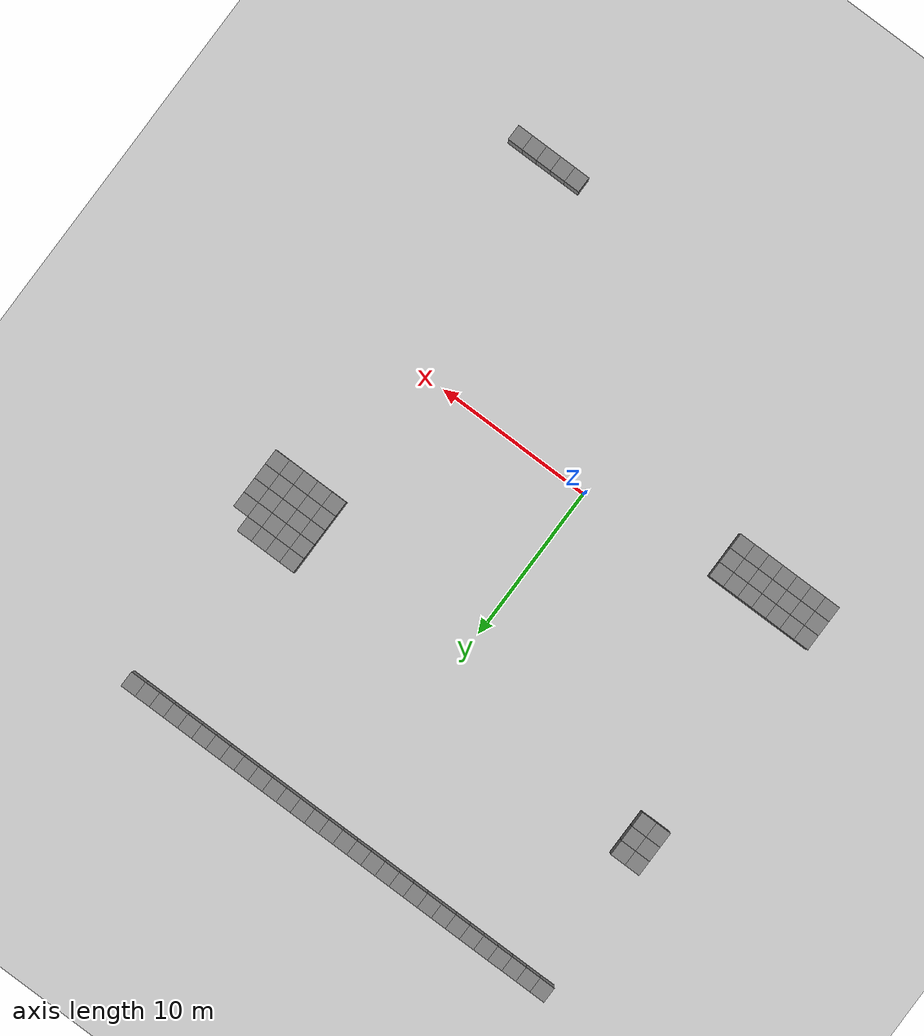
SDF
<sdf version="1.9">
 <world name="grid_world">
  <model name="ground_plane">
   <static>true</static>
   <link name="link">
    <collision name="collision">
     <geometry><plane><normal>0 0 1</normal><size>100 100</size></plane></geometry>
    </collision>
    <visual name="visual">
     <geometry><plane><normal>0 0 1</normal><size>100 100</size></plane></geometry>
     <material>
      <ambient>0.8 0.8 0.8 1</ambient>
      <diffuse>0.8 0.8 0.8 1</diffuse>
      <specular>0.8 0.8 0.8 1</specular>
     </material>
    </visual>
   </link>
  </model>
  <model name="wall_11_36">
   <static>true</static>
   <pose>11 -14 1 0 0 0</pose>
   <link name="link">
    <collision name="collision"><geometry><box><size>1 1 2</size></box></geometry></collision>
    <visual name="visual">
     <geometry><box><size>1 1 2</size></box></geometry>
     <material>
      <ambient>0.5 0.5 0.5 1</ambient>
      <diffuse>0.5 0.5 0.5 1</diffuse>
      <specular>0.5 0.5 0.5 1</specular>
     </material>
    </visual>
   </link>
  </model>
  <model name="wall_11_37">
   <static>true</static>
   <pose>12 -14 1 0 0 0</pose>
   <link name="link">
    <collision name="collision"><geometry><box><size>1 1 2</size></box></geometry></collision>
    <visual name="visual">
     <geometry><box><size>1 1 2</size></box></geometry>
     <material>
      <ambient>0.5 0.5 0.5 1</ambient>
      <diffuse>0.5 0.5 0.5 1</diffuse>
      <specular>0.5 0.5 0.5 1</specular>
     </material>
    </visual>
   </link>
  </model>
  <model name="wall_11_38">
   <static>true</static>
   <pose>13 -14 1 0 0 0</pose>
   <link name="link">
    <collision name="collision"><geometry><box><size>1 1 2</size></box></geometry></collision>
    <visual name="visual">
     <geometry><box><size>1 1 2</size></box></geometry>
     <material>
      <ambient>0.5 0.5 0.5 1</ambient>
      <diffuse>0.5 0.5 0.5 1</diffuse>
      <specular>0.5 0.5 0.5 1</specular>
     </material>
    </visual>
   </link>
  </model>
  <model name="wall_11_39">
   <static>true</static>
   <pose>14 -14 1 0 0 0</pose>
   <link name="link">
    <collision name="collision"><geometry><box><size>1 1 2</size></box></geometry></collision>
    <visual name="visual">
     <geometry><box><size>1 1 2</size></box></geometry>
     <material>
      <ambient>0.5 0.5 0.5 1</ambient>
      <diffuse>0.5 0.5 0.5 1</diffuse>
      <specular>0.5 0.5 0.5 1</specular>
     </material>
    </visual>
   </link>
  </model>
  <model name="wall_11_40">
   <static>true</static>
   <pose>15 -14 1 0 0 0</pose>
   <link name="link">
    <collision name="collision"><geometry><box><size>1 1 2</size></box></geometry></collision>
    <visual name="visual">
     <geometry><box><size>1 1 2</size></box></geometry>
     <material>
      <ambient>0.5 0.5 0.5 1</ambient>
      <diffuse>0.5 0.5 0.5 1</diffuse>
      <specular>0.5 0.5 0.5 1</specular>
     </material>
    </visual>
   </link>
  </model>
  <model name="wall_22_10">
   <static>true</static>
   <pose>-15 -3 1 0 0 0</pose>
   <link name="link">
    <collision name="collision"><geometry><box><size>1 1 2</size></box></geometry></collision>
    <visual name="visual">
     <geometry><box><size>1 1 2</size></box></geometry>
     <material>
      <ambient>0.5 0.5 0.5 1</ambient>
      <diffuse>0.5 0.5 0.5 1</diffuse>
      <specular>0.5 0.5 0.5 1</specular>
     </material>
    </visual>
   </link>
  </model>
  <model name="wall_22_11">
   <static>true</static>
   <pose>-14 -3 1 0 0 0</pose>
   <link name="link">
    <collision name="collision"><geometry><box><size>1 1 2</size></box></geometry></collision>
    <visual name="visual">
     <geometry><box><size>1 1 2</size></box></geometry>
     <material>
      <ambient>0.5 0.5 0.5 1</ambient>
      <diffuse>0.5 0.5 0.5 1</diffuse>
      <specular>0.5 0.5 0.5 1</specular>
     </material>
    </visual>
   </link>
  </model>
  <model name="wall_22_12">
   <static>true</static>
   <pose>-13 -3 1 0 0 0</pose>
   <link name="link">
    <collision name="collision"><geometry><box><size>1 1 2</size></box></geometry></collision>
    <visual name="visual">
     <geometry><box><size>1 1 2</size></box></geometry>
     <material>
      <ambient>0.5 0.5 0.5 1</ambient>
      <diffuse>0.5 0.5 0.5 1</diffuse>
      <specular>0.5 0.5 0.5 1</specular>
     </material>
    </visual>
   </link>
  </model>
  <model name="wall_22_13">
   <static>true</static>
   <pose>-12 -3 1 0 0 0</pose>
   <link name="link">
    <collision name="collision"><geometry><box><size>1 1 2</size></box></geometry></collision>
    <visual name="visual">
     <geometry><box><size>1 1 2</size></box></geometry>
     <material>
      <ambient>0.5 0.5 0.5 1</ambient>
      <diffuse>0.5 0.5 0.5 1</diffuse>
      <specular>0.5 0.5 0.5 1</specular>
     </material>
    </visual>
   </link>
  </model>
  <model name="wall_22_14">
   <static>true</static>
   <pose>-11 -3 1 0 0 0</pose>
   <link name="link">
    <collision name="collision"><geometry><box><size>1 1 2</size></box></geometry></collision>
    <visual name="visual">
     <geometry><box><size>1 1 2</size></box></geometry>
     <material>
      <ambient>0.5 0.5 0.5 1</ambient>
      <diffuse>0.5 0.5 0.5 1</diffuse>
      <specular>0.5 0.5 0.5 1</specular>
     </material>
    </visual>
   </link>
  </model>
  <model name="wall_22_15">
   <static>true</static>
   <pose>-10 -3 1 0 0 0</pose>
   <link name="link">
    <collision name="collision"><geometry><box><size>1 1 2</size></box></geometry></collision>
    <visual name="visual">
     <geometry><box><size>1 1 2</size></box></geometry>
     <material>
      <ambient>0.5 0.5 0.5 1</ambient>
      <diffuse>0.5 0.5 0.5 1</diffuse>
      <specular>0.5 0.5 0.5 1</specular>
     </material>
    </visual>
   </link>
  </model>
  <model name="wall_22_16">
   <static>true</static>
   <pose>-9 -3 1 0 0 0</pose>
   <link name="link">
    <collision name="collision"><geometry><box><size>1 1 2</size></box></geometry></collision>
    <visual name="visual">
     <geometry><box><size>1 1 2</size></box></geometry>
     <material>
      <ambient>0.5 0.5 0.5 1</ambient>
      <diffuse>0.5 0.5 0.5 1</diffuse>
      <specular>0.5 0.5 0.5 1</specular>
     </material>
    </visual>
   </link>
  </model>
  <model name="wall_23_10">
   <static>true</static>
   <pose>-15 -2 1 0 0 0</pose>
   <link name="link">
    <collision name="collision"><geometry><box><size>1 1 2</size></box></geometry></collision>
    <visual name="visual">
     <geometry><box><size>1 1 2</size></box></geometry>
     <material>
      <ambient>0.5 0.5 0.5 1</ambient>
      <diffuse>0.5 0.5 0.5 1</diffuse>
      <specular>0.5 0.5 0.5 1</specular>
     </material>
    </visual>
   </link>
  </model>
  <model name="wall_23_11">
   <static>true</static>
   <pose>-14 -2 1 0 0 0</pose>
   <link name="link">
    <collision name="collision"><geometry><box><size>1 1 2</size></box></geometry></collision>
    <visual name="visual">
     <geometry><box><size>1 1 2</size></box></geometry>
     <material>
      <ambient>0.5 0.5 0.5 1</ambient>
      <diffuse>0.5 0.5 0.5 1</diffuse>
      <specular>0.5 0.5 0.5 1</specular>
     </material>
    </visual>
   </link>
  </model>
  <model name="wall_23_12">
   <static>true</static>
   <pose>-13 -2 1 0 0 0</pose>
   <link name="link">
    <collision name="collision"><geometry><box><size>1 1 2</size></box></geometry></collision>
    <visual name="visual">
     <geometry><box><size>1 1 2</size></box></geometry>
     <material>
      <ambient>0.5 0.5 0.5 1</ambient>
      <diffuse>0.5 0.5 0.5 1</diffuse>
      <specular>0.5 0.5 0.5 1</specular>
     </material>
    </visual>
   </link>
  </model>
  <model name="wall_23_13">
   <static>true</static>
   <pose>-12 -2 1 0 0 0</pose>
   <link name="link">
    <collision name="collision"><geometry><box><size>1 1 2</size></box></geometry></collision>
    <visual name="visual">
     <geometry><box><size>1 1 2</size></box></geometry>
     <material>
      <ambient>0.5 0.5 0.5 1</ambient>
      <diffuse>0.5 0.5 0.5 1</diffuse>
      <specular>0.5 0.5 0.5 1</specular>
     </material>
    </visual>
   </link>
  </model>
  <model name="wall_23_14">
   <static>true</static>
   <pose>-11 -2 1 0 0 0</pose>
   <link name="link">
    <collision name="collision"><geometry><box><size>1 1 2</size></box></geometry></collision>
    <visual name="visual">
     <geometry><box><size>1 1 2</size></box></geometry>
     <material>
      <ambient>0.5 0.5 0.5 1</ambient>
      <diffuse>0.5 0.5 0.5 1</diffuse>
      <specular>0.5 0.5 0.5 1</specular>
     </material>
    </visual>
   </link>
  </model>
  <model name="wall_23_15">
   <static>true</static>
   <pose>-10 -2 1 0 0 0</pose>
   <link name="link">
    <collision name="collision"><geometry><box><size>1 1 2</size></box></geometry></collision>
    <visual name="visual">
     <geometry><box><size>1 1 2</size></box></geometry>
     <material>
      <ambient>0.5 0.5 0.5 1</ambient>
      <diffuse>0.5 0.5 0.5 1</diffuse>
      <specular>0.5 0.5 0.5 1</specular>
     </material>
    </visual>
   </link>
  </model>
  <model name="wall_23_16">
   <static>true</static>
   <pose>-9 -2 1 0 0 0</pose>
   <link name="link">
    <collision name="collision"><geometry><box><size>1 1 2</size></box></geometry></collision>
    <visual name="visual">
     <geometry><box><size>1 1 2</size></box></geometry>
     <material>
      <ambient>0.5 0.5 0.5 1</ambient>
      <diffuse>0.5 0.5 0.5 1</diffuse>
      <specular>0.5 0.5 0.5 1</specular>
     </material>
    </visual>
   </link>
  </model>
  <model name="wall_24_10">
   <static>true</static>
   <pose>-15 -1 1 0 0 0</pose>
   <link name="link">
    <collision name="collision"><geometry><box><size>1 1 2</size></box></geometry></collision>
    <visual name="visual">
     <geometry><box><size>1 1 2</size></box></geometry>
     <material>
      <ambient>0.5 0.5 0.5 1</ambient>
      <diffuse>0.5 0.5 0.5 1</diffuse>
      <specular>0.5 0.5 0.5 1</specular>
     </material>
    </visual>
   </link>
  </model>
  <model name="wall_24_11">
   <static>true</static>
   <pose>-14 -1 1 0 0 0</pose>
   <link name="link">
    <collision name="collision"><geometry><box><size>1 1 2</size></box></geometry></collision>
    <visual name="visual">
     <geometry><box><size>1 1 2</size></box></geometry>
     <material>
      <ambient>0.5 0.5 0.5 1</ambient>
      <diffuse>0.5 0.5 0.5 1</diffuse>
      <specular>0.5 0.5 0.5 1</specular>
     </material>
    </visual>
   </link>
  </model>
  <model name="wall_24_12">
   <static>true</static>
   <pose>-13 -1 1 0 0 0</pose>
   <link name="link">
    <collision name="collision"><geometry><box><size>1 1 2</size></box></geometry></collision>
    <visual name="visual">
     <geometry><box><size>1 1 2</size></box></geometry>
     <material>
      <ambient>0.5 0.5 0.5 1</ambient>
      <diffuse>0.5 0.5 0.5 1</diffuse>
      <specular>0.5 0.5 0.5 1</specular>
     </material>
    </visual>
   </link>
  </model>
  <model name="wall_24_13">
   <static>true</static>
   <pose>-12 -1 1 0 0 0</pose>
   <link name="link">
    <collision name="collision"><geometry><box><size>1 1 2</size></box></geometry></collision>
    <visual name="visual">
     <geometry><box><size>1 1 2</size></box></geometry>
     <material>
      <ambient>0.5 0.5 0.5 1</ambient>
      <diffuse>0.5 0.5 0.5 1</diffuse>
      <specular>0.5 0.5 0.5 1</specular>
     </material>
    </visual>
   </link>
  </model>
  <model name="wall_24_14">
   <static>true</static>
   <pose>-11 -1 1 0 0 0</pose>
   <link name="link">
    <collision name="collision"><geometry><box><size>1 1 2</size></box></geometry></collision>
    <visual name="visual">
     <geometry><box><size>1 1 2</size></box></geometry>
     <material>
      <ambient>0.5 0.5 0.5 1</ambient>
      <diffuse>0.5 0.5 0.5 1</diffuse>
      <specular>0.5 0.5 0.5 1</specular>
     </material>
    </visual>
   </link>
  </model>
  <model name="wall_24_15">
   <static>true</static>
   <pose>-10 -1 1 0 0 0</pose>
   <link name="link">
    <collision name="collision"><geometry><box><size>1 1 2</size></box></geometry></collision>
    <visual name="visual">
     <geometry><box><size>1 1 2</size></box></geometry>
     <material>
      <ambient>0.5 0.5 0.5 1</ambient>
      <diffuse>0.5 0.5 0.5 1</diffuse>
      <specular>0.5 0.5 0.5 1</specular>
     </material>
    </visual>
   </link>
  </model>
  <model name="wall_24_16">
   <static>true</static>
   <pose>-9 -1 1 0 0 0</pose>
   <link name="link">
    <collision name="collision"><geometry><box><size>1 1 2</size></box></geometry></collision>
    <visual name="visual">
     <geometry><box><size>1 1 2</size></box></geometry>
     <material>
      <ambient>0.5 0.5 0.5 1</ambient>
      <diffuse>0.5 0.5 0.5 1</diffuse>
      <specular>0.5 0.5 0.5 1</specular>
     </material>
    </visual>
   </link>
  </model>
  <model name="wall_34_36">
   <static>true</static>
   <pose>11 9 1 0 0 0</pose>
   <link name="link">
    <collision name="collision"><geometry><box><size>1 1 2</size></box></geometry></collision>
    <visual name="visual">
     <geometry><box><size>1 1 2</size></box></geometry>
     <material>
      <ambient>0.5 0.5 0.5 1</ambient>
      <diffuse>0.5 0.5 0.5 1</diffuse>
      <specular>0.5 0.5 0.5 1</specular>
     </material>
    </visual>
   </link>
  </model>
  <model name="wall_34_37">
   <static>true</static>
   <pose>12 9 1 0 0 0</pose>
   <link name="link">
    <collision name="collision"><geometry><box><size>1 1 2</size></box></geometry></collision>
    <visual name="visual">
     <geometry><box><size>1 1 2</size></box></geometry>
     <material>
      <ambient>0.5 0.5 0.5 1</ambient>
      <diffuse>0.5 0.5 0.5 1</diffuse>
      <specular>0.5 0.5 0.5 1</specular>
     </material>
    </visual>
   </link>
  </model>
  <model name="wall_34_38">
   <static>true</static>
   <pose>13 9 1 0 0 0</pose>
   <link name="link">
    <collision name="collision"><geometry><box><size>1 1 2</size></box></geometry></collision>
    <visual name="visual">
     <geometry><box><size>1 1 2</size></box></geometry>
     <material>
      <ambient>0.5 0.5 0.5 1</ambient>
      <diffuse>0.5 0.5 0.5 1</diffuse>
      <specular>0.5 0.5 0.5 1</specular>
     </material>
    </visual>
   </link>
  </model>
  <model name="wall_34_39">
   <static>true</static>
   <pose>14 9 1 0 0 0</pose>
   <link name="link">
    <collision name="collision"><geometry><box><size>1 1 2</size></box></geometry></collision>
    <visual name="visual">
     <geometry><box><size>1 1 2</size></box></geometry>
     <material>
      <ambient>0.5 0.5 0.5 1</ambient>
      <diffuse>0.5 0.5 0.5 1</diffuse>
      <specular>0.5 0.5 0.5 1</specular>
     </material>
    </visual>
   </link>
  </model>
  <model name="wall_34_40">
   <static>true</static>
   <pose>15 9 1 0 0 0</pose>
   <link name="link">
    <collision name="collision"><geometry><box><size>1 1 2</size></box></geometry></collision>
    <visual name="visual">
     <geometry><box><size>1 1 2</size></box></geometry>
     <material>
      <ambient>0.5 0.5 0.5 1</ambient>
      <diffuse>0.5 0.5 0.5 1</diffuse>
      <specular>0.5 0.5 0.5 1</specular>
     </material>
    </visual>
   </link>
  </model>
  <model name="wall_35_36">
   <static>true</static>
   <pose>11 10 1 0 0 0</pose>
   <link name="link">
    <collision name="collision"><geometry><box><size>1 1 2</size></box></geometry></collision>
    <visual name="visual">
     <geometry><box><size>1 1 2</size></box></geometry>
     <material>
      <ambient>0.5 0.5 0.5 1</ambient>
      <diffuse>0.5 0.5 0.5 1</diffuse>
      <specular>0.5 0.5 0.5 1</specular>
     </material>
    </visual>
   </link>
  </model>
  <model name="wall_35_37">
   <static>true</static>
   <pose>12 10 1 0 0 0</pose>
   <link name="link">
    <collision name="collision"><geometry><box><size>1 1 2</size></box></geometry></collision>
    <visual name="visual">
     <geometry><box><size>1 1 2</size></box></geometry>
     <material>
      <ambient>0.5 0.5 0.5 1</ambient>
      <diffuse>0.5 0.5 0.5 1</diffuse>
      <specular>0.5 0.5 0.5 1</specular>
     </material>
    </visual>
   </link>
  </model>
  <model name="wall_35_38">
   <static>true</static>
   <pose>13 10 1 0 0 0</pose>
   <link name="link">
    <collision name="collision"><geometry><box><size>1 1 2</size></box></geometry></collision>
    <visual name="visual">
     <geometry><box><size>1 1 2</size></box></geometry>
     <material>
      <ambient>0.5 0.5 0.5 1</ambient>
      <diffuse>0.5 0.5 0.5 1</diffuse>
      <specular>0.5 0.5 0.5 1</specular>
     </material>
    </visual>
   </link>
  </model>
  <model name="wall_35_39">
   <static>true</static>
   <pose>14 10 1 0 0 0</pose>
   <link name="link">
    <collision name="collision"><geometry><box><size>1 1 2</size></box></geometry></collision>
    <visual name="visual">
     <geometry><box><size>1 1 2</size></box></geometry>
     <material>
      <ambient>0.5 0.5 0.5 1</ambient>
      <diffuse>0.5 0.5 0.5 1</diffuse>
      <specular>0.5 0.5 0.5 1</specular>
     </material>
    </visual>
   </link>
  </model>
  <model name="wall_35_40">
   <static>true</static>
   <pose>15 10 1 0 0 0</pose>
   <link name="link">
    <collision name="collision"><geometry><box><size>1 1 2</size></box></geometry></collision>
    <visual name="visual">
     <geometry><box><size>1 1 2</size></box></geometry>
     <material>
      <ambient>0.5 0.5 0.5 1</ambient>
      <diffuse>0.5 0.5 0.5 1</diffuse>
      <specular>0.5 0.5 0.5 1</specular>
     </material>
    </visual>
   </link>
  </model>
  <model name="wall_36_36">
   <static>true</static>
   <pose>11 11 1 0 0 0</pose>
   <link name="link">
    <collision name="collision"><geometry><box><size>1 1 2</size></box></geometry></collision>
    <visual name="visual">
     <geometry><box><size>1 1 2</size></box></geometry>
     <material>
      <ambient>0.5 0.5 0.5 1</ambient>
      <diffuse>0.5 0.5 0.5 1</diffuse>
      <specular>0.5 0.5 0.5 1</specular>
     </material>
    </visual>
   </link>
  </model>
  <model name="wall_36_37">
   <static>true</static>
   <pose>12 11 1 0 0 0</pose>
   <link name="link">
    <collision name="collision"><geometry><box><size>1 1 2</size></box></geometry></collision>
    <visual name="visual">
     <geometry><box><size>1 1 2</size></box></geometry>
     <material>
      <ambient>0.5 0.5 0.5 1</ambient>
      <diffuse>0.5 0.5 0.5 1</diffuse>
      <specular>0.5 0.5 0.5 1</specular>
     </material>
    </visual>
   </link>
  </model>
  <model name="wall_36_38">
   <static>true</static>
   <pose>13 11 1 0 0 0</pose>
   <link name="link">
    <collision name="collision"><geometry><box><size>1 1 2</size></box></geometry></collision>
    <visual name="visual">
     <geometry><box><size>1 1 2</size></box></geometry>
     <material>
      <ambient>0.5 0.5 0.5 1</ambient>
      <diffuse>0.5 0.5 0.5 1</diffuse>
      <specular>0.5 0.5 0.5 1</specular>
     </material>
    </visual>
   </link>
  </model>
  <model name="wall_36_39">
   <static>true</static>
   <pose>14 11 1 0 0 0</pose>
   <link name="link">
    <collision name="collision"><geometry><box><size>1 1 2</size></box></geometry></collision>
    <visual name="visual">
     <geometry><box><size>1 1 2</size></box></geometry>
     <material>
      <ambient>0.5 0.5 0.5 1</ambient>
      <diffuse>0.5 0.5 0.5 1</diffuse>
      <specular>0.5 0.5 0.5 1</specular>
     </material>
    </visual>
   </link>
  </model>
  <model name="wall_36_40">
   <static>true</static>
   <pose>15 11 1 0 0 0</pose>
   <link name="link">
    <collision name="collision"><geometry><box><size>1 1 2</size></box></geometry></collision>
    <visual name="visual">
     <geometry><box><size>1 1 2</size></box></geometry>
     <material>
      <ambient>0.5 0.5 0.5 1</ambient>
      <diffuse>0.5 0.5 0.5 1</diffuse>
      <specular>0.5 0.5 0.5 1</specular>
     </material>
    </visual>
   </link>
  </model>
  <model name="wall_37_36">
   <static>true</static>
   <pose>11 12 1 0 0 0</pose>
   <link name="link">
    <collision name="collision"><geometry><box><size>1 1 2</size></box></geometry></collision>
    <visual name="visual">
     <geometry><box><size>1 1 2</size></box></geometry>
     <material>
      <ambient>0.5 0.5 0.5 1</ambient>
      <diffuse>0.5 0.5 0.5 1</diffuse>
      <specular>0.5 0.5 0.5 1</specular>
     </material>
    </visual>
   </link>
  </model>
  <model name="wall_37_37">
   <static>true</static>
   <pose>12 12 1 0 0 0</pose>
   <link name="link">
    <collision name="collision"><geometry><box><size>1 1 2</size></box></geometry></collision>
    <visual name="visual">
     <geometry><box><size>1 1 2</size></box></geometry>
     <material>
      <ambient>0.5 0.5 0.5 1</ambient>
      <diffuse>0.5 0.5 0.5 1</diffuse>
      <specular>0.5 0.5 0.5 1</specular>
     </material>
    </visual>
   </link>
  </model>
  <model name="wall_37_38">
   <static>true</static>
   <pose>13 12 1 0 0 0</pose>
   <link name="link">
    <collision name="collision"><geometry><box><size>1 1 2</size></box></geometry></collision>
    <visual name="visual">
     <geometry><box><size>1 1 2</size></box></geometry>
     <material>
      <ambient>0.5 0.5 0.5 1</ambient>
      <diffuse>0.5 0.5 0.5 1</diffuse>
      <specular>0.5 0.5 0.5 1</specular>
     </material>
    </visual>
   </link>
  </model>
  <model name="wall_37_39">
   <static>true</static>
   <pose>14 12 1 0 0 0</pose>
   <link name="link">
    <collision name="collision"><geometry><box><size>1 1 2</size></box></geometry></collision>
    <visual name="visual">
     <geometry><box><size>1 1 2</size></box></geometry>
     <material>
      <ambient>0.5 0.5 0.5 1</ambient>
      <diffuse>0.5 0.5 0.5 1</diffuse>
      <specular>0.5 0.5 0.5 1</specular>
     </material>
    </visual>
   </link>
  </model>
  <model name="wall_37_40">
   <static>true</static>
   <pose>15 12 1 0 0 0</pose>
   <link name="link">
    <collision name="collision"><geometry><box><size>1 1 2</size></box></geometry></collision>
    <visual name="visual">
     <geometry><box><size>1 1 2</size></box></geometry>
     <material>
      <ambient>0.5 0.5 0.5 1</ambient>
      <diffuse>0.5 0.5 0.5 1</diffuse>
      <specular>0.5 0.5 0.5 1</specular>
     </material>
    </visual>
   </link>
  </model>
  <model name="wall_38_10">
   <static>true</static>
   <pose>-15 13 1 0 0 0</pose>
   <link name="link">
    <collision name="collision"><geometry><box><size>1 1 2</size></box></geometry></collision>
    <visual name="visual">
     <geometry><box><size>1 1 2</size></box></geometry>
     <material>
      <ambient>0.5 0.5 0.5 1</ambient>
      <diffuse>0.5 0.5 0.5 1</diffuse>
      <specular>0.5 0.5 0.5 1</specular>
     </material>
    </visual>
   </link>
  </model>
  <model name="wall_38_11">
   <static>true</static>
   <pose>-14 13 1 0 0 0</pose>
   <link name="link">
    <collision name="collision"><geometry><box><size>1 1 2</size></box></geometry></collision>
    <visual name="visual">
     <geometry><box><size>1 1 2</size></box></geometry>
     <material>
      <ambient>0.5 0.5 0.5 1</ambient>
      <diffuse>0.5 0.5 0.5 1</diffuse>
      <specular>0.5 0.5 0.5 1</specular>
     </material>
    </visual>
   </link>
  </model>
  <model name="wall_38_36">
   <static>true</static>
   <pose>11 13 1 0 0 0</pose>
   <link name="link">
    <collision name="collision"><geometry><box><size>1 1 2</size></box></geometry></collision>
    <visual name="visual">
     <geometry><box><size>1 1 2</size></box></geometry>
     <material>
      <ambient>0.5 0.5 0.5 1</ambient>
      <diffuse>0.5 0.5 0.5 1</diffuse>
      <specular>0.5 0.5 0.5 1</specular>
     </material>
    </visual>
   </link>
  </model>
  <model name="wall_38_37">
   <static>true</static>
   <pose>12 13 1 0 0 0</pose>
   <link name="link">
    <collision name="collision"><geometry><box><size>1 1 2</size></box></geometry></collision>
    <visual name="visual">
     <geometry><box><size>1 1 2</size></box></geometry>
     <material>
      <ambient>0.5 0.5 0.5 1</ambient>
      <diffuse>0.5 0.5 0.5 1</diffuse>
      <specular>0.5 0.5 0.5 1</specular>
     </material>
    </visual>
   </link>
  </model>
  <model name="wall_38_38">
   <static>true</static>
   <pose>13 13 1 0 0 0</pose>
   <link name="link">
    <collision name="collision"><geometry><box><size>1 1 2</size></box></geometry></collision>
    <visual name="visual">
     <geometry><box><size>1 1 2</size></box></geometry>
     <material>
      <ambient>0.5 0.5 0.5 1</ambient>
      <diffuse>0.5 0.5 0.5 1</diffuse>
      <specular>0.5 0.5 0.5 1</specular>
     </material>
    </visual>
   </link>
  </model>
  <model name="wall_38_39">
   <static>true</static>
   <pose>14 13 1 0 0 0</pose>
   <link name="link">
    <collision name="collision"><geometry><box><size>1 1 2</size></box></geometry></collision>
    <visual name="visual">
     <geometry><box><size>1 1 2</size></box></geometry>
     <material>
      <ambient>0.5 0.5 0.5 1</ambient>
      <diffuse>0.5 0.5 0.5 1</diffuse>
      <specular>0.5 0.5 0.5 1</specular>
     </material>
    </visual>
   </link>
  </model>
  <model name="wall_39_10">
   <static>true</static>
   <pose>-15 14 1 0 0 0</pose>
   <link name="link">
    <collision name="collision"><geometry><box><size>1 1 2</size></box></geometry></collision>
    <visual name="visual">
     <geometry><box><size>1 1 2</size></box></geometry>
     <material>
      <ambient>0.5 0.5 0.5 1</ambient>
      <diffuse>0.5 0.5 0.5 1</diffuse>
      <specular>0.5 0.5 0.5 1</specular>
     </material>
    </visual>
   </link>
  </model>
  <model name="wall_39_11">
   <static>true</static>
   <pose>-14 14 1 0 0 0</pose>
   <link name="link">
    <collision name="collision"><geometry><box><size>1 1 2</size></box></geometry></collision>
    <visual name="visual">
     <geometry><box><size>1 1 2</size></box></geometry>
     <material>
      <ambient>0.5 0.5 0.5 1</ambient>
      <diffuse>0.5 0.5 0.5 1</diffuse>
      <specular>0.5 0.5 0.5 1</specular>
     </material>
    </visual>
   </link>
  </model>
  <model name="wall_40_10">
   <static>true</static>
   <pose>-15 15 1 0 0 0</pose>
   <link name="link">
    <collision name="collision"><geometry><box><size>1 1 2</size></box></geometry></collision>
    <visual name="visual">
     <geometry><box><size>1 1 2</size></box></geometry>
     <material>
      <ambient>0.5 0.5 0.5 1</ambient>
      <diffuse>0.5 0.5 0.5 1</diffuse>
      <specular>0.5 0.5 0.5 1</specular>
     </material>
    </visual>
   </link>
  </model>
  <model name="wall_40_11">
   <static>true</static>
   <pose>-14 15 1 0 0 0</pose>
   <link name="link">
    <collision name="collision"><geometry><box><size>1 1 2</size></box></geometry></collision>
    <visual name="visual">
     <geometry><box><size>1 1 2</size></box></geometry>
     <material>
      <ambient>0.5 0.5 0.5 1</ambient>
      <diffuse>0.5 0.5 0.5 1</diffuse>
      <specular>0.5 0.5 0.5 1</specular>
     </material>
    </visual>
   </link>
  </model>
  <model name="wall_49_10">
   <static>true</static>
   <pose>-15 24 1 0 0 0</pose>
   <link name="link">
    <collision name="collision"><geometry><box><size>1 1 2</size></box></geometry></collision>
    <visual name="visual">
     <geometry><box><size>1 1 2</size></box></geometry>
     <material>
      <ambient>0.5 0.5 0.5 1</ambient>
      <diffuse>0.5 0.5 0.5 1</diffuse>
      <specular>0.5 0.5 0.5 1</specular>
     </material>
    </visual>
   </link>
  </model>
  <model name="wall_49_11">
   <static>true</static>
   <pose>-14 24 1 0 0 0</pose>
   <link name="link">
    <collision name="collision"><geometry><box><size>1 1 2</size></box></geometry></collision>
    <visual name="visual">
     <geometry><box><size>1 1 2</size></box></geometry>
     <material>
      <ambient>0.5 0.5 0.5 1</ambient>
      <diffuse>0.5 0.5 0.5 1</diffuse>
      <specular>0.5 0.5 0.5 1</specular>
     </material>
    </visual>
   </link>
  </model>
  <model name="wall_49_12">
   <static>true</static>
   <pose>-13 24 1 0 0 0</pose>
   <link name="link">
    <collision name="collision"><geometry><box><size>1 1 2</size></box></geometry></collision>
    <visual name="visual">
     <geometry><box><size>1 1 2</size></box></geometry>
     <material>
      <ambient>0.5 0.5 0.5 1</ambient>
      <diffuse>0.5 0.5 0.5 1</diffuse>
      <specular>0.5 0.5 0.5 1</specular>
     </material>
    </visual>
   </link>
  </model>
  <model name="wall_49_13">
   <static>true</static>
   <pose>-12 24 1 0 0 0</pose>
   <link name="link">
    <collision name="collision"><geometry><box><size>1 1 2</size></box></geometry></collision>
    <visual name="visual">
     <geometry><box><size>1 1 2</size></box></geometry>
     <material>
      <ambient>0.5 0.5 0.5 1</ambient>
      <diffuse>0.5 0.5 0.5 1</diffuse>
      <specular>0.5 0.5 0.5 1</specular>
     </material>
    </visual>
   </link>
  </model>
  <model name="wall_49_14">
   <static>true</static>
   <pose>-11 24 1 0 0 0</pose>
   <link name="link">
    <collision name="collision"><geometry><box><size>1 1 2</size></box></geometry></collision>
    <visual name="visual">
     <geometry><box><size>1 1 2</size></box></geometry>
     <material>
      <ambient>0.5 0.5 0.5 1</ambient>
      <diffuse>0.5 0.5 0.5 1</diffuse>
      <specular>0.5 0.5 0.5 1</specular>
     </material>
    </visual>
   </link>
  </model>
  <model name="wall_49_15">
   <static>true</static>
   <pose>-10 24 1 0 0 0</pose>
   <link name="link">
    <collision name="collision"><geometry><box><size>1 1 2</size></box></geometry></collision>
    <visual name="visual">
     <geometry><box><size>1 1 2</size></box></geometry>
     <material>
      <ambient>0.5 0.5 0.5 1</ambient>
      <diffuse>0.5 0.5 0.5 1</diffuse>
      <specular>0.5 0.5 0.5 1</specular>
     </material>
    </visual>
   </link>
  </model>
  <model name="wall_49_16">
   <static>true</static>
   <pose>-9 24 1 0 0 0</pose>
   <link name="link">
    <collision name="collision"><geometry><box><size>1 1 2</size></box></geometry></collision>
    <visual name="visual">
     <geometry><box><size>1 1 2</size></box></geometry>
     <material>
      <ambient>0.5 0.5 0.5 1</ambient>
      <diffuse>0.5 0.5 0.5 1</diffuse>
      <specular>0.5 0.5 0.5 1</specular>
     </material>
    </visual>
   </link>
  </model>
  <model name="wall_49_17">
   <static>true</static>
   <pose>-8 24 1 0 0 0</pose>
   <link name="link">
    <collision name="collision"><geometry><box><size>1 1 2</size></box></geometry></collision>
    <visual name="visual">
     <geometry><box><size>1 1 2</size></box></geometry>
     <material>
      <ambient>0.5 0.5 0.5 1</ambient>
      <diffuse>0.5 0.5 0.5 1</diffuse>
      <specular>0.5 0.5 0.5 1</specular>
     </material>
    </visual>
   </link>
  </model>
  <model name="wall_49_18">
   <static>true</static>
   <pose>-7 24 1 0 0 0</pose>
   <link name="link">
    <collision name="collision"><geometry><box><size>1 1 2</size></box></geometry></collision>
    <visual name="visual">
     <geometry><box><size>1 1 2</size></box></geometry>
     <material>
      <ambient>0.5 0.5 0.5 1</ambient>
      <diffuse>0.5 0.5 0.5 1</diffuse>
      <specular>0.5 0.5 0.5 1</specular>
     </material>
    </visual>
   </link>
  </model>
  <model name="wall_49_19">
   <static>true</static>
   <pose>-6 24 1 0 0 0</pose>
   <link name="link">
    <collision name="collision"><geometry><box><size>1 1 2</size></box></geometry></collision>
    <visual name="visual">
     <geometry><box><size>1 1 2</size></box></geometry>
     <material>
      <ambient>0.5 0.5 0.5 1</ambient>
      <diffuse>0.5 0.5 0.5 1</diffuse>
      <specular>0.5 0.5 0.5 1</specular>
     </material>
    </visual>
   </link>
  </model>
  <model name="wall_49_20">
   <static>true</static>
   <pose>-5 24 1 0 0 0</pose>
   <link name="link">
    <collision name="collision"><geometry><box><size>1 1 2</size></box></geometry></collision>
    <visual name="visual">
     <geometry><box><size>1 1 2</size></box></geometry>
     <material>
      <ambient>0.5 0.5 0.5 1</ambient>
      <diffuse>0.5 0.5 0.5 1</diffuse>
      <specular>0.5 0.5 0.5 1</specular>
     </material>
    </visual>
   </link>
  </model>
  <model name="wall_49_21">
   <static>true</static>
   <pose>-4 24 1 0 0 0</pose>
   <link name="link">
    <collision name="collision"><geometry><box><size>1 1 2</size></box></geometry></collision>
    <visual name="visual">
     <geometry><box><size>1 1 2</size></box></geometry>
     <material>
      <ambient>0.5 0.5 0.5 1</ambient>
      <diffuse>0.5 0.5 0.5 1</diffuse>
      <specular>0.5 0.5 0.5 1</specular>
     </material>
    </visual>
   </link>
  </model>
  <model name="wall_49_22">
   <static>true</static>
   <pose>-3 24 1 0 0 0</pose>
   <link name="link">
    <collision name="collision"><geometry><box><size>1 1 2</size></box></geometry></collision>
    <visual name="visual">
     <geometry><box><size>1 1 2</size></box></geometry>
     <material>
      <ambient>0.5 0.5 0.5 1</ambient>
      <diffuse>0.5 0.5 0.5 1</diffuse>
      <specular>0.5 0.5 0.5 1</specular>
     </material>
    </visual>
   </link>
  </model>
  <model name="wall_49_23">
   <static>true</static>
   <pose>-2 24 1 0 0 0</pose>
   <link name="link">
    <collision name="collision"><geometry><box><size>1 1 2</size></box></geometry></collision>
    <visual name="visual">
     <geometry><box><size>1 1 2</size></box></geometry>
     <material>
      <ambient>0.5 0.5 0.5 1</ambient>
      <diffuse>0.5 0.5 0.5 1</diffuse>
      <specular>0.5 0.5 0.5 1</specular>
     </material>
    </visual>
   </link>
  </model>
  <model name="wall_49_24">
   <static>true</static>
   <pose>-1 24 1 0 0 0</pose>
   <link name="link">
    <collision name="collision"><geometry><box><size>1 1 2</size></box></geometry></collision>
    <visual name="visual">
     <geometry><box><size>1 1 2</size></box></geometry>
     <material>
      <ambient>0.5 0.5 0.5 1</ambient>
      <diffuse>0.5 0.5 0.5 1</diffuse>
      <specular>0.5 0.5 0.5 1</specular>
     </material>
    </visual>
   </link>
  </model>
  <model name="wall_49_25">
   <static>true</static>
   <pose>0 24 1 0 0 0</pose>
   <link name="link">
    <collision name="collision"><geometry><box><size>1 1 2</size></box></geometry></collision>
    <visual name="visual">
     <geometry><box><size>1 1 2</size></box></geometry>
     <material>
      <ambient>0.5 0.5 0.5 1</ambient>
      <diffuse>0.5 0.5 0.5 1</diffuse>
      <specular>0.5 0.5 0.5 1</specular>
     </material>
    </visual>
   </link>
  </model>
  <model name="wall_49_26">
   <static>true</static>
   <pose>1 24 1 0 0 0</pose>
   <link name="link">
    <collision name="collision"><geometry><box><size>1 1 2</size></box></geometry></collision>
    <visual name="visual">
     <geometry><box><size>1 1 2</size></box></geometry>
     <material>
      <ambient>0.5 0.5 0.5 1</ambient>
      <diffuse>0.5 0.5 0.5 1</diffuse>
      <specular>0.5 0.5 0.5 1</specular>
     </material>
    </visual>
   </link>
  </model>
  <model name="wall_49_27">
   <static>true</static>
   <pose>2 24 1 0 0 0</pose>
   <link name="link">
    <collision name="collision"><geometry><box><size>1 1 2</size></box></geometry></collision>
    <visual name="visual">
     <geometry><box><size>1 1 2</size></box></geometry>
     <material>
      <ambient>0.5 0.5 0.5 1</ambient>
      <diffuse>0.5 0.5 0.5 1</diffuse>
      <specular>0.5 0.5 0.5 1</specular>
     </material>
    </visual>
   </link>
  </model>
  <model name="wall_49_28">
   <static>true</static>
   <pose>3 24 1 0 0 0</pose>
   <link name="link">
    <collision name="collision"><geometry><box><size>1 1 2</size></box></geometry></collision>
    <visual name="visual">
     <geometry><box><size>1 1 2</size></box></geometry>
     <material>
      <ambient>0.5 0.5 0.5 1</ambient>
      <diffuse>0.5 0.5 0.5 1</diffuse>
      <specular>0.5 0.5 0.5 1</specular>
     </material>
    </visual>
   </link>
  </model>
  <model name="wall_49_29">
   <static>true</static>
   <pose>4 24 1 0 0 0</pose>
   <link name="link">
    <collision name="collision"><geometry><box><size>1 1 2</size></box></geometry></collision>
    <visual name="visual">
     <geometry><box><size>1 1 2</size></box></geometry>
     <material>
      <ambient>0.5 0.5 0.5 1</ambient>
      <diffuse>0.5 0.5 0.5 1</diffuse>
      <specular>0.5 0.5 0.5 1</specular>
     </material>
    </visual>
   </link>
  </model>
  <model name="wall_49_30">
   <static>true</static>
   <pose>5 24 1 0 0 0</pose>
   <link name="link">
    <collision name="collision"><geometry><box><size>1 1 2</size></box></geometry></collision>
    <visual name="visual">
     <geometry><box><size>1 1 2</size></box></geometry>
     <material>
      <ambient>0.5 0.5 0.5 1</ambient>
      <diffuse>0.5 0.5 0.5 1</diffuse>
      <specular>0.5 0.5 0.5 1</specular>
     </material>
    </visual>
   </link>
  </model>
  <model name="wall_49_31">
   <static>true</static>
   <pose>6 24 1 0 0 0</pose>
   <link name="link">
    <collision name="collision"><geometry><box><size>1 1 2</size></box></geometry></collision>
    <visual name="visual">
     <geometry><box><size>1 1 2</size></box></geometry>
     <material>
      <ambient>0.5 0.5 0.5 1</ambient>
      <diffuse>0.5 0.5 0.5 1</diffuse>
      <specular>0.5 0.5 0.5 1</specular>
     </material>
    </visual>
   </link>
  </model>
  <model name="wall_49_32">
   <static>true</static>
   <pose>7 24 1 0 0 0</pose>
   <link name="link">
    <collision name="collision"><geometry><box><size>1 1 2</size></box></geometry></collision>
    <visual name="visual">
     <geometry><box><size>1 1 2</size></box></geometry>
     <material>
      <ambient>0.5 0.5 0.5 1</ambient>
      <diffuse>0.5 0.5 0.5 1</diffuse>
      <specular>0.5 0.5 0.5 1</specular>
     </material>
    </visual>
   </link>
  </model>
  <model name="wall_49_33">
   <static>true</static>
   <pose>8 24 1 0 0 0</pose>
   <link name="link">
    <collision name="collision"><geometry><box><size>1 1 2</size></box></geometry></collision>
    <visual name="visual">
     <geometry><box><size>1 1 2</size></box></geometry>
     <material>
      <ambient>0.5 0.5 0.5 1</ambient>
      <diffuse>0.5 0.5 0.5 1</diffuse>
      <specular>0.5 0.5 0.5 1</specular>
     </material>
    </visual>
   </link>
  </model>
  <model name="wall_49_34">
   <static>true</static>
   <pose>9 24 1 0 0 0</pose>
   <link name="link">
    <collision name="collision"><geometry><box><size>1 1 2</size></box></geometry></collision>
    <visual name="visual">
     <geometry><box><size>1 1 2</size></box></geometry>
     <material>
      <ambient>0.5 0.5 0.5 1</ambient>
      <diffuse>0.5 0.5 0.5 1</diffuse>
      <specular>0.5 0.5 0.5 1</specular>
     </material>
    </visual>
   </link>
  </model>
  <model name="wall_49_35">
   <static>true</static>
   <pose>10 24 1 0 0 0</pose>
   <link name="link">
    <collision name="collision"><geometry><box><size>1 1 2</size></box></geometry></collision>
    <visual name="visual">
     <geometry><box><size>1 1 2</size></box></geometry>
     <material>
      <ambient>0.5 0.5 0.5 1</ambient>
      <diffuse>0.5 0.5 0.5 1</diffuse>
      <specular>0.5 0.5 0.5 1</specular>
     </material>
    </visual>
   </link>
  </model>
  <model name="wall_49_36">
   <static>true</static>
   <pose>11 24 1 0 0 0</pose>
   <link name="link">
    <collision name="collision"><geometry><box><size>1 1 2</size></box></geometry></collision>
    <visual name="visual">
     <geometry><box><size>1 1 2</size></box></geometry>
     <material>
      <ambient>0.5 0.5 0.5 1</ambient>
      <diffuse>0.5 0.5 0.5 1</diffuse>
      <specular>0.5 0.5 0.5 1</specular>
     </material>
    </visual>
   </link>
  </model>
  <model name="wall_49_37">
   <static>true</static>
   <pose>12 24 1 0 0 0</pose>
   <link name="link">
    <collision name="collision"><geometry><box><size>1 1 2</size></box></geometry></collision>
    <visual name="visual">
     <geometry><box><size>1 1 2</size></box></geometry>
     <material>
      <ambient>0.5 0.5 0.5 1</ambient>
      <diffuse>0.5 0.5 0.5 1</diffuse>
      <specular>0.5 0.5 0.5 1</specular>
     </material>
    </visual>
   </link>
  </model>
  <model name="wall_49_38">
   <static>true</static>
   <pose>13 24 1 0 0 0</pose>
   <link name="link">
    <collision name="collision"><geometry><box><size>1 1 2</size></box></geometry></collision>
    <visual name="visual">
     <geometry><box><size>1 1 2</size></box></geometry>
     <material>
      <ambient>0.5 0.5 0.5 1</ambient>
      <diffuse>0.5 0.5 0.5 1</diffuse>
      <specular>0.5 0.5 0.5 1</specular>
     </material>
    </visual>
   </link>
  </model>
  <model name="wall_49_39">
   <static>true</static>
   <pose>14 24 1 0 0 0</pose>
   <link name="link">
    <collision name="collision"><geometry><box><size>1 1 2</size></box></geometry></collision>
    <visual name="visual">
     <geometry><box><size>1 1 2</size></box></geometry>
     <material>
      <ambient>0.5 0.5 0.5 1</ambient>
      <diffuse>0.5 0.5 0.5 1</diffuse>
      <specular>0.5 0.5 0.5 1</specular>
     </material>
    </visual>
   </link>
  </model>
 </world>
</sdf>
